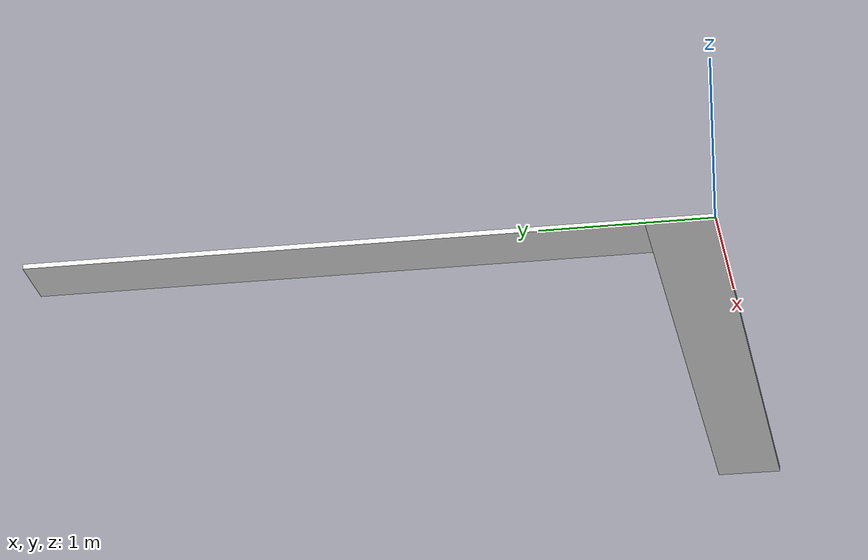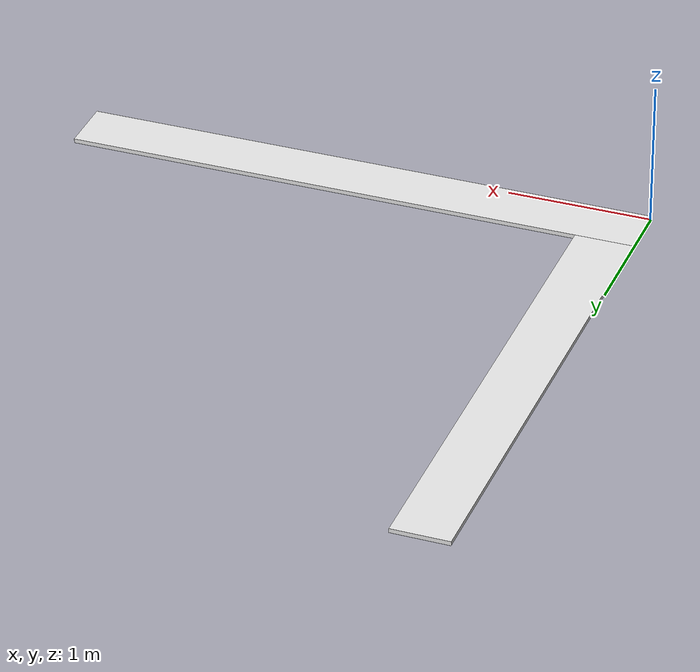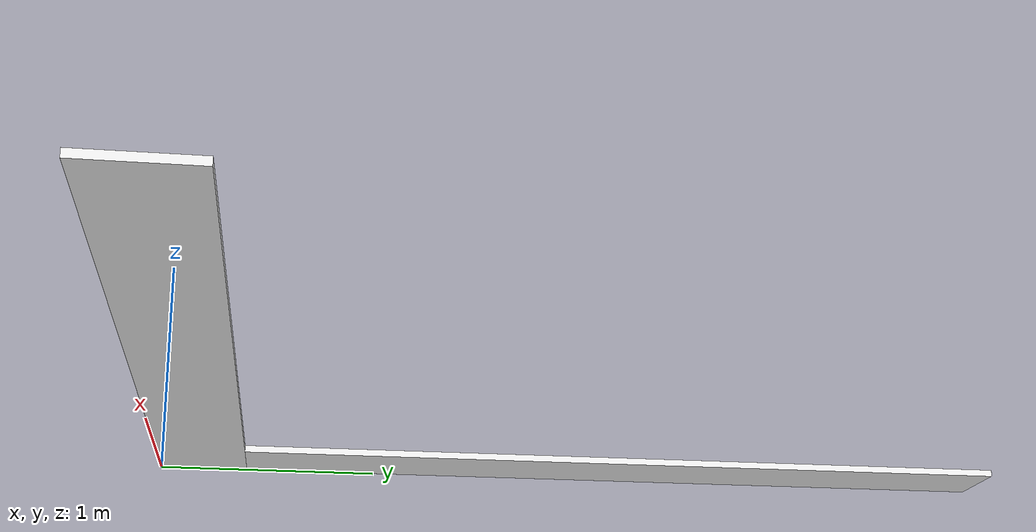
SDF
<?xml version='1.0'?>
<sdf version='1.6'>
  <model name='L_wooden_frame'>
    <link name='link_0'>
      <pose frame=''>0 0 -0 0 -0 0</pose>
      <inertial>
        <mass>1</mass>
        <inertia>
          <ixx>0.166667</ixx>
          <ixy>0</ixy>
          <ixz>0</ixz>
          <iyy>0.166667</iyy>
          <iyz>0</iyz>
          <izz>0.166667</izz>
        </inertia>
        <pose frame=''>0 0 0 0 -0 0</pose>
      </inertial>
      <gravity>1</gravity>
      <self_collide>0</self_collide>
      <kinematic>0</kinematic>
      <visual name='visual'>
        <pose frame=''>0.2 2.2 0.015 0 -0 0</pose>
        <geometry>
          <box>
            <size>0.4 3.6 0.03</size>
          </box>
        </geometry>
        <material>
          <lighting>1</lighting>
          <script>
            <uri>model://L_wooden_frame/materials/scripts</uri>
            <uri>model://L_wooden_frame/materials/textures</uri>
            <name>L_frame_2</name>
          </script>
          <ambient>0.9 0.9 0.9 1</ambient>
          <diffuse>0.9 0.9 0.9 1</diffuse>
          <specular>0.01 0.01 0.01 1</specular>
          <emissive>0 0 0 1</emissive>
          <shader type='vertex'>
            <normal_map>__default__</normal_map>
          </shader>
        </material>
        <cast_shadows>1</cast_shadows>
        <transparency>0</transparency>
      </visual>
      <visual name='ModelPreview_0::link_0::visual_1'>
        <pose frame=''>2 0.2 0.015 0 -0 0</pose>
        <geometry>
          <box>
            <size>4 0.4 0.03</size>
          </box>
        </geometry>
        <material>
          <lighting>1</lighting>
          <script>
            <uri>model://L_wooden_frame/materials/scripts</uri>
            <uri>model://L_wooden_frame/materials/textures</uri>
            <name>L_frame</name>
          </script>
          <ambient>0.9 0.9 0.9 1</ambient>
          <diffuse>0.9 0.9 0.9 1</diffuse>
          <specular>0.01 0.01 0.01 1</specular>
          <emissive>0 0 0 1</emissive>
          <shader type='vertex'>
            <normal_map>__default__</normal_map>
          </shader>
        </material>
        <cast_shadows>1</cast_shadows>
        <transparency>0</transparency>
      </visual>
      <collision name='collision'>
        <laser_retro>0</laser_retro>
        <max_contacts>10</max_contacts>
        <pose frame=''>0.2 2.2 0.015 0 -0 0</pose>
        <geometry>
          <box>
            <size>0.4 3.6 0.03</size>
          </box>
        </geometry>
        <surface>
          <friction>
            <ode>
              <mu>1</mu>
              <mu2>1</mu2>
              <fdir1>0 0 0</fdir1>
              <slip1>0</slip1>
              <slip2>0</slip2>
            </ode>
            <torsional>
              <coefficient>1</coefficient>
              <patch_radius>0</patch_radius>
              <surface_radius>0</surface_radius>
              <use_patch_radius>1</use_patch_radius>
              <ode>
                <slip>0</slip>
              </ode>
            </torsional>
          </friction>
          <bounce>
            <restitution_coefficient>0</restitution_coefficient>
            <threshold>1e+06</threshold>
          </bounce>
          <contact>
            <collide_without_contact>0</collide_without_contact>
            <collide_without_contact_bitmask>1</collide_without_contact_bitmask>
            <collide_bitmask>1</collide_bitmask>
            <ode>
              <soft_cfm>0</soft_cfm>
              <soft_erp>0.2</soft_erp>
              <kp>1e+13</kp>
              <kd>1</kd>
              <max_vel>0.01</max_vel>
              <min_depth>0</min_depth>
            </ode>
            <bullet>
              <split_impulse>1</split_impulse>
              <split_impulse_penetration_threshold>-0.01</split_impulse_penetration_threshold>
              <soft_cfm>0</soft_cfm>
              <soft_erp>0.2</soft_erp>
              <kp>1e+13</kp>
              <kd>1</kd>
            </bullet>
          </contact>
        </surface>
      </collision>
      <collision name='collision_1'>
        <laser_retro>0</laser_retro>
        <max_contacts>10</max_contacts>
        <pose frame=''>2 0.2 0.015 0 -0 0</pose>
        <geometry>
          <box>
            <size>4 0.4 0.03</size>
          </box>
        </geometry>
        <surface>
          <friction>
            <ode>
              <mu>1</mu>
              <mu2>1</mu2>
              <fdir1>0 0 0</fdir1>
              <slip1>0</slip1>
              <slip2>0</slip2>
            </ode>
            <torsional>
              <coefficient>1</coefficient>
              <patch_radius>0</patch_radius>
              <surface_radius>0</surface_radius>
              <use_patch_radius>1</use_patch_radius>
              <ode>
                <slip>0</slip>
              </ode>
            </torsional>
          </friction>
          <bounce>
            <restitution_coefficient>0</restitution_coefficient>
            <threshold>1e+06</threshold>
          </bounce>
          <contact>
            <collide_without_contact>0</collide_without_contact>
            <collide_without_contact_bitmask>1</collide_without_contact_bitmask>
            <collide_bitmask>1</collide_bitmask>
            <ode>
              <soft_cfm>0</soft_cfm>
              <soft_erp>0.2</soft_erp>
              <kp>1e+13</kp>
              <kd>1</kd>
              <max_vel>0.01</max_vel>
              <min_depth>0</min_depth>
            </ode>
            <bullet>
              <split_impulse>1</split_impulse>
              <split_impulse_penetration_threshold>-0.01</split_impulse_penetration_threshold>
              <soft_cfm>0</soft_cfm>
              <soft_erp>0.2</soft_erp>
              <kp>1e+13</kp>
              <kd>1</kd>
            </bullet>
          </contact>
        </surface>
      </collision>
    </link>
    <static>1</static>
    <allow_auto_disable>0</allow_auto_disable>
  </model>
</sdf>
